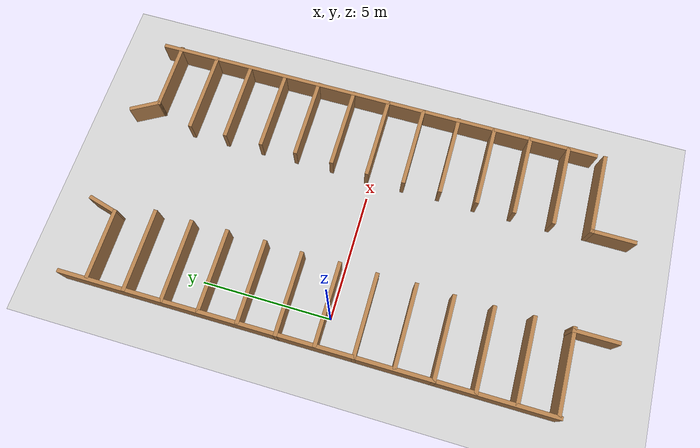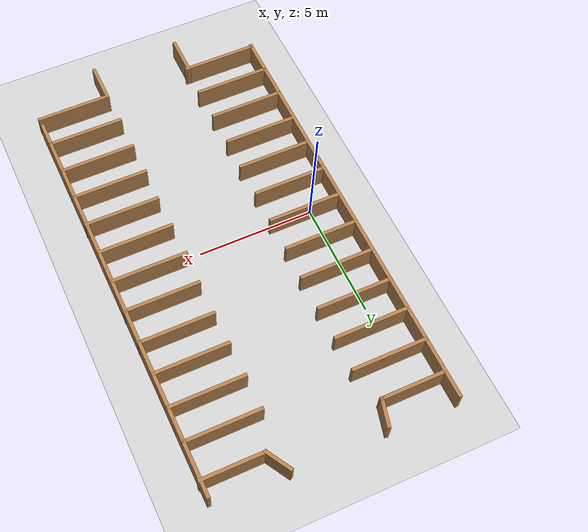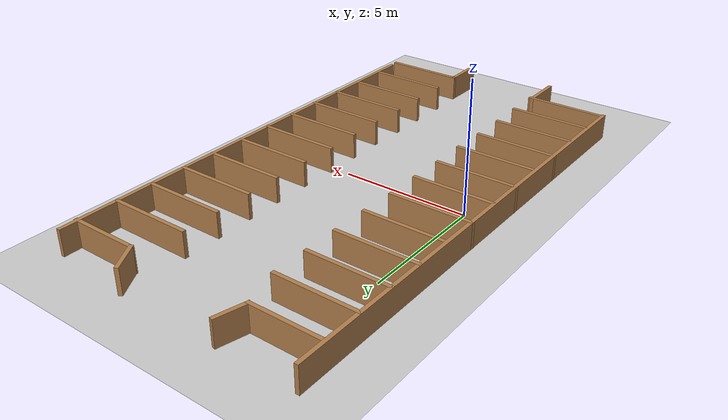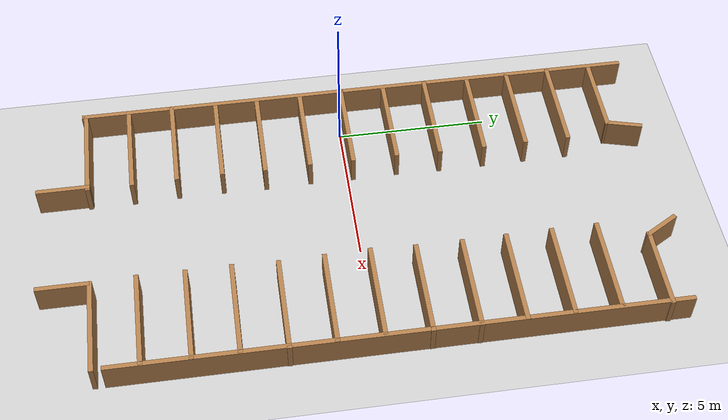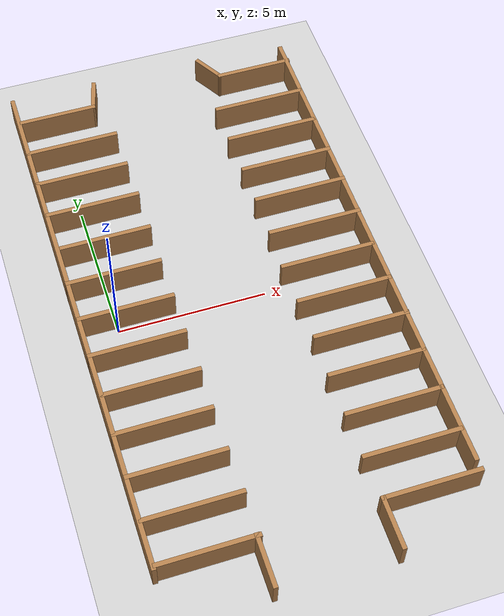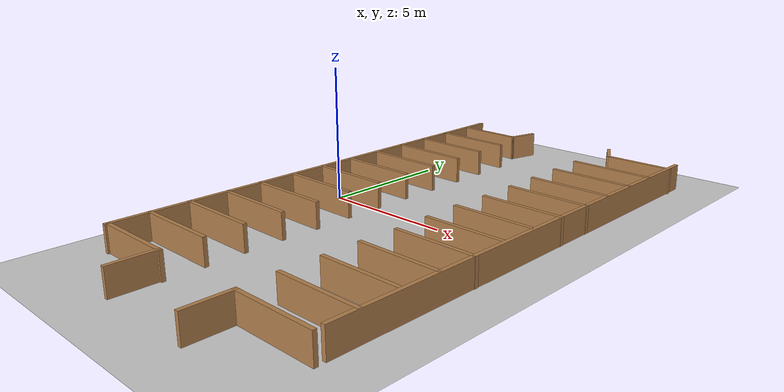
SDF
<sdf version='1.6'>

  <world name='default'>
    <light name='sun' type='directional'>
      <cast_shadows>1</cast_shadows>
      <pose frame=''>0 0 10 0 -0 0</pose>
      <diffuse>0.8 0.8 0.8 1</diffuse>
      <specular>0.1 0.1 0.1 1</specular>
      <attenuation>
        <range>1000</range>
        <constant>0.9</constant>
        <linear>0.01</linear>
        <quadratic>0.001</quadratic>
      </attenuation>
      <direction>-0.5 0.5 -1</direction>
    </light>
    <model name='ground_plane'>
      <static>1</static>
      <link name='link'>
        <collision name='collision'>
          <geometry>
            <plane>
              <normal>0 0 1</normal>
              <size>100 100</size>
            </plane>
          </geometry>
          <surface>
            <friction>
              <ode>
                <mu>100</mu>
                <mu2>50</mu2>
              </ode>
            </friction>
            <bounce/>
            <contact>
              <ode/>
            </contact>
          </surface>
          <max_contacts>10</max_contacts>
        </collision>
        <visual name='visual'>
          <cast_shadows>0</cast_shadows>
          <geometry>
            <plane>
              <normal>0 0 1</normal>
              <size>25 25</size>
            </plane>
          </geometry>
          <material>
            <script>
              <uri>file://media/materials/scripts/gazebo.material</uri>
              <name>Gazebo/Grey</name>
            </script>
          </material>
        </visual>
        <velocity_decay>
          <linear>0</linear>
          <angular>0</angular>
        </velocity_decay>
        <self_collide>0</self_collide>
        <kinematic>0</kinematic>
        <gravity>1</gravity>
      </link>
    </model>
    <model name='Parking_Lot_Final'>
      <pose frame=''>-0.2395 -0.024499 0 0 -0 0</pose>
      <link name='Wall_1'>
        <collision name='Wall_1_Collision'>
          <geometry>
            <box>
              <size>18.75 0.15 1</size>
            </box>
          </geometry>
          <pose frame=''>0 0 0.5 0 -0 0</pose>
        </collision>
        <visual name='Wall_1_Visual'>
          <pose frame=''>0 0 0.5 0 -0 0</pose>
          <geometry>
            <box>
              <size>18 0.15 1</size>
            </box>
          </geometry>
          <material>
            <script>
              <uri>file://media/materials/scripts/gazebo.material</uri>
              <name>Gazebo/Wood</name>
            </script>
            <ambient>1 1 1 1</ambient>
          </material>
        </visual>
        <pose frame=''>9.0865 0.805499 0 0 0 -1.5708</pose>
      </link>

      <link name='Wall_102'>
        <collision name='Wall_102_Collision'>
          <geometry>
            <box>
              <size>2.75 0.15 1</size>
            </box>
          </geometry>
          <pose frame=''>0 0 0.5 0 -0 0</pose>
        </collision>
        <visual name='Wall_102_Visual'>
          <pose frame=''>0 0 0.5 0 -0 0</pose>
          <geometry>
            <box>
              <size>2.75 0.15 1</size>
            </box>
          </geometry>
          <material>
            <script>
              <uri>file://media/materials/scripts/gazebo.material</uri>
              <name>Gazebo/Wood</name>
            </script>
            <ambient>1 1 1 1</ambient>
          </material>
        </visual>
        <pose frame=''>7.8255 9.0675 0 0 -0 0</pose>
      </link>
      <link name='Wall_104'>
        <collision name='Wall_104_Collision'>
          <geometry>
            <box>
              <size>3.25 0.15 1</size>
            </box>
          </geometry>
          <pose frame=''>0 0 0.5 0 -0 0</pose>
        </collision>
        <visual name='Wall_104_Visual'>
          <pose frame=''>0 0 0.5 0 -0 0</pose>
          <geometry>
            <box>
              <size>3.25 0.15 1</size>
            </box>
          </geometry>
          <material>
            <script>
              <uri>file://media/materials/scripts/gazebo.material</uri>
              <name>Gazebo/Wood</name>
            </script>
            <ambient>1 1 1 1</ambient>
          </material>
        </visual>
        <pose frame=''>7.5035 7.5095 0 0 -0 3.14159</pose>
      </link>
      <link name='Wall_108'>
        <collision name='Wall_108_Collision'>
          <geometry>
            <box>
              <size>3.25 0.15 1</size>
            </box>
          </geometry>
          <pose frame=''>0 0 0.5 0 -0 0</pose>
        </collision>
        <visual name='Wall_108_Visual'>
          <pose frame=''>0 0 0.5 0 -0 0</pose>
          <geometry>
            <box>
              <size>3.25 0.15 1</size>
            </box>
          </geometry>
          <material>
            <script>
              <uri>file://media/materials/scripts/gazebo.material</uri>
              <name>Gazebo/Wood</name>
            </script>
            <ambient>1 1 1 1</ambient>
          </material>
        </visual>
        <pose frame=''>7.5085 6.0475 0 0 -0 0</pose>
      </link>
      <link name='Wall_110'>
        <collision name='Wall_110_Collision'>
          <geometry>
            <box>
              <size>3.25 0.15 1</size>
            </box>
          </geometry>
          <pose frame=''>0 0 0.5 0 -0 0</pose>
        </collision>
        <visual name='Wall_110_Visual'>
          <pose frame=''>0 0 0.5 0 -0 0</pose>
          <geometry>
            <box>
              <size>3.25 0.15 1</size>
            </box>
          </geometry>
          <material>
            <script>
              <uri>file://media/materials/scripts/gazebo.material</uri>
              <name>Gazebo/Wood</name>
            </script>
            <ambient>1 1 1 1</ambient>
          </material>
        </visual>
        <pose frame=''>7.5305 4.5715 0 0 -0 0</pose>
      </link>
      <link name='Wall_112'>
        <collision name='Wall_112_Collision'>
          <geometry>
            <box>
              <size>3.25 0.15 1</size>
            </box>
          </geometry>
          <pose frame=''>0 0 0.5 0 -0 0</pose>
        </collision>
        <visual name='Wall_112_Visual'>
          <pose frame=''>0 0 0.5 0 -0 0</pose>
          <geometry>
            <box>
              <size>3.25 0.15 1</size>
            </box>
          </geometry>
          <material>
            <script>
              <uri>file://media/materials/scripts/gazebo.material</uri>
              <name>Gazebo/Wood</name>
            </script>
            <ambient>1 1 1 1</ambient>
          </material>
        </visual>
        <pose frame=''>7.5475 3.1615 0 0 -0 0</pose>
      </link>
      <link name='Wall_114'>
        <collision name='Wall_114_Collision'>
          <geometry>
            <box>
              <size>3.25 0.15 1</size>
            </box>
          </geometry>
          <pose frame=''>0 0 0.5 0 -0 0</pose>
        </collision>
        <visual name='Wall_114_Visual'>
          <pose frame=''>0 0 0.5 0 -0 0</pose>
          <geometry>
            <box>
              <size>3.25 0.15 1</size>
            </box>
          </geometry>
          <material>
            <script>
              <uri>file://media/materials/scripts/gazebo.material</uri>
              <name>Gazebo/Wood</name>
            </script>
            <ambient>1 1 1 1</ambient>
          </material>
        </visual>
        <pose frame=''>7.5475 1.6825 0 0 -0 0</pose>
      </link>
      <link name='Wall_116'>
        <collision name='Wall_116_Collision'>
          <geometry>
            <box>
              <size>3.25 0.15 1</size>
            </box>
          </geometry>
          <pose frame=''>0 0 0.5 0 -0 0</pose>
        </collision>
        <visual name='Wall_116_Visual'>
          <pose frame=''>0 0 0.5 0 -0 0</pose>
          <geometry>
            <box>
              <size>3.25 0.15 1</size>
            </box>
          </geometry>
          <material>
            <script>
              <uri>file://media/materials/scripts/gazebo.material</uri>
              <name>Gazebo/Wood</name>
            </script>
            <ambient>1 1 1 1</ambient>
          </material>
        </visual>
        <pose frame=''>7.4785 0.240499 0 0 -0 0</pose>
      </link>
      <link name='Wall_118'>
        <collision name='Wall_118_Collision'>
          <geometry>
            <box>
              <size>3.25 0.15 1</size>
            </box>
          </geometry>
          <pose frame=''>0 0 0.5 0 -0 0</pose>
        </collision>
        <visual name='Wall_118_Visual'>
          <pose frame=''>0 0 0.5 0 -0 0</pose>
          <geometry>
            <box>
              <size>3.25 0.15 1</size>
            </box>
          </geometry>
          <material>
            <script>
              <uri>file://media/materials/scripts/gazebo.material</uri>
              <name>Gazebo/Wood</name>
            </script>
            <ambient>1 1 1 1</ambient>
          </material>
        </visual>
        <pose frame=''>7.5175 -1.2075 0 0 -0 0</pose>
      </link>
      <link name='Wall_120'>
        <collision name='Wall_120_Collision'>
          <geometry>
            <box>
              <size>3.25 0.15 1</size>
            </box>
          </geometry>
          <pose frame=''>0 0 0.5 0 -0 0</pose>
        </collision>
        <visual name='Wall_120_Visual'>
          <pose frame=''>0 0 0.5 0 -0 0</pose>
          <geometry>
            <box>
              <size>3.25 0.15 1</size>
            </box>
          </geometry>
          <material>
            <script>
              <uri>file://media/materials/scripts/gazebo.material</uri>
              <name>Gazebo/Wood</name>
            </script>
            <ambient>1 1 1 1</ambient>
          </material>
        </visual>
        <pose frame=''>7.5535 -2.6525 0 0 -0 0</pose>
      </link>
      <link name='Wall_122'>
        <collision name='Wall_122_Collision'>
          <geometry>
            <box>
              <size>3.25 0.15 1</size>
            </box>
          </geometry>
          <pose frame=''>0 0 0.5 0 -0 0</pose>
        </collision>
        <visual name='Wall_122_Visual'>
          <pose frame=''>0 0 0.5 0 -0 0</pose>
          <geometry>
            <box>
              <size>3.25 0.15 1</size>
            </box>
          </geometry>
          <material>
            <script>
              <uri>file://media/materials/scripts/gazebo.material</uri>
              <name>Gazebo/Wood</name>
            </script>
            <ambient>1 1 1 1</ambient>
          </material>
        </visual>
        <pose frame=''>7.5015 -4.1085 0 0 -0 0</pose>
      </link>
      <link name='Wall_125'>
        <collision name='Wall_125_Collision'>
          <geometry>
            <box>
              <size>3.25 0.15 1</size>
            </box>
          </geometry>
          <pose frame=''>0 0 0.5 0 -0 0</pose>
        </collision>
        <visual name='Wall_125_Visual'>
          <pose frame=''>0 0 0.5 0 -0 0</pose>
          <geometry>
            <box>
              <size>3.25 0.15 1</size>
            </box>
          </geometry>
          <material>
            <script>
              <uri>file://media/materials/scripts/gazebo.material</uri>
              <name>Gazebo/Wood</name>
            </script>
            <ambient>1 1 1 1</ambient>
          </material>
        </visual>
        <pose frame=''>7.5105 -5.5515 0 0 -0 0</pose>
      </link>
      <link name='Wall_127'>
        <collision name='Wall_127_Collision'>
          <geometry>
            <box>
              <size>3.25 0.15 1</size>
            </box>
          </geometry>
          <pose frame=''>0 0 0.5 0 -0 0</pose>
        </collision>
        <visual name='Wall_127_Visual'>
          <pose frame=''>0 0 0.5 0 -0 0</pose>
          <geometry>
            <box>
              <size>3.25 0.15 1</size>
            </box>
          </geometry>
          <material>
            <script>
              <uri>file://media/materials/scripts/gazebo.material</uri>
              <name>Gazebo/Wood</name>
            </script>
            <ambient>1 1 1 1</ambient>
          </material>
        </visual>
        <pose frame=''>7.4955 -7.0615 0 0 -0 0</pose>
      </link>

      <link name='Wall_2'>
        <collision name='Wall_2_Collision'>
          <geometry>
            <box>
              <size>3.25 0.15 1</size>
            </box>
          </geometry>
          <pose frame=''>0 0 0.5 0 -0 0</pose>
        </collision>
        <visual name='Wall_2_Visual'>
          <pose frame=''>0 0 0.5 0 -0 0</pose>
          <geometry>
            <box>
              <size>3.25 0.15 1</size>
            </box>
          </geometry>
          <material>
            <script>
              <uri>file://media/materials/scripts/gazebo.material</uri>
              <name>Gazebo/Wood</name>
            </script>
            <ambient>1 1 1 1</ambient>
          </material>
        </visual>
        <pose frame=''>7.5365 -8.4945 0 0 -0 3.14159</pose>
      </link>

      <link name='Wall_3'>
        <collision name='Wall_3_Collision'>
          <geometry>
            <box>
              <size>1.75 0.15 1</size>
            </box>
          </geometry>
          <pose frame=''>0 0 0.5 0 -0 0</pose>
        </collision>
        <visual name='Wall_3_Visual'>
          <pose frame=''>0 0 0.5 0 -0 0</pose>
          <geometry>
            <box>
              <size>1.75 0.15 1</size>
            </box>
          </geometry>
          <material>
            <script>
              <uri>file://media/materials/scripts/gazebo.material</uri>
              <name>Gazebo/Wood</name>
            </script>
            <ambient>1 1 1 1</ambient>
          </material>
        </visual>
        <pose frame=''>5.9865 -9.2945 0 0 0 -1.5708</pose>
      </link>

      <link name='Wall_41'>
        <collision name='Wall_41_Collision'>
          <geometry>
            <box>
              <size>1.75 0.15 1</size>
            </box>
          </geometry>
          <pose frame=''>0 0 0.5 0 -0 0</pose>
        </collision>
        <visual name='Wall_41_Visual'>
          <pose frame=''>0 0 0.5 0 -0 0</pose>
          <geometry>
            <box>
              <size>1.75 0.15 1</size>
            </box>
          </geometry>
          <material>
            <script>
              <uri>file://media/materials/scripts/gazebo.material</uri>
              <name>Gazebo/Wood</name>
            </script>
            <ambient>1 1 1 1</ambient>
          </material>
        </visual>
        <pose frame=''>2.1235 -9.2905 0 0 -0 1.5708</pose>
      </link>
      <link name='Wall_42'>
        <collision name='Wall_42_Collision'>
          <geometry>
            <box>
              <size>3.25 0.15 1</size>
            </box>
          </geometry>
          <pose frame=''>0 0 0.5 0 -0 0</pose>
        </collision>
        <visual name='Wall_42_Visual'>
          <pose frame=''>0 0 0.5 0 -0 0</pose>
          <geometry>
            <box>
              <size>3.25 0.15 1</size>
            </box>
          </geometry>
          <material>
            <script>
              <uri>file://media/materials/scripts/gazebo.material</uri>
              <name>Gazebo/Wood</name>
            </script>
            <ambient>1 1 1 1</ambient>
          </material>
        </visual>
        <pose frame=''>0.6475 -8.4995 0 0 -0 0</pose>
      </link>

      <link name='Wall_65'>
        <collision name='Wall_65_Collision'>
          <geometry>
            <box>
              <size>3.25 0.15 1</size>
            </box>
          </geometry>
          <pose frame=''>0 0 0.5 0 -0 0</pose>
        </collision>
        <visual name='Wall_65_Visual'>
          <pose frame=''>0 0 0.5 0 -0 0</pose>
          <geometry>
            <box>
              <size>3.25 0.15 1</size>
            </box>
          </geometry>
          <material>
            <script>
              <uri>file://media/materials/scripts/gazebo.material</uri>
              <name>Gazebo/Wood</name>
            </script>
            <ambient>1 1 1 1</ambient>
          </material>
        </visual>
        <pose frame=''>0.5985 7.4965 0 0 -0 0</pose>
      </link>
      <link name='Wall_67'>
        <collision name='Wall_67_Collision'>
          <geometry>
            <box>
              <size>3.25 0.15 1</size>
            </box>
          </geometry>
          <pose frame=''>0 0 0.5 0 -0 0</pose>
        </collision>
        <visual name='Wall_67_Visual'>
          <pose frame=''>0 0 0.5 0 -0 0</pose>
          <geometry>
            <box>
              <size>3.25 0.15 1</size>
            </box>
          </geometry>
          <material>
            <script>
              <uri>file://media/materials/scripts/gazebo.material</uri>
              <name>Gazebo/Wood</name>
            </script>
            <ambient>1 1 1 1</ambient>
          </material>
        </visual>
        <pose frame=''>0.5985 6.0445 0 0 -0 0</pose>
      </link>
      <link name='Wall_69'>
        <collision name='Wall_69_Collision'>
          <geometry>
            <box>
              <size>3.25 0.15 1</size>
            </box>
          </geometry>
          <pose frame=''>0 0 0.5 0 -0 0</pose>
        </collision>
        <visual name='Wall_69_Visual'>
          <pose frame=''>0 0 0.5 0 -0 0</pose>
          <geometry>
            <box>
              <size>3.25 0.15 1</size>
            </box>
          </geometry>
          <material>
            <script>
              <uri>file://media/materials/scripts/gazebo.material</uri>
              <name>Gazebo/Wood</name>
            </script>
            <ambient>1 1 1 1</ambient>
          </material>
        </visual>
        <pose frame=''>0.6185 4.6325 0 0 -0 0</pose>
      </link>
      <link name='Wall_71'>
        <collision name='Wall_71_Collision'>
          <geometry>
            <box>
              <size>3.25 0.15 1</size>
            </box>
          </geometry>
          <pose frame=''>0 0 0.5 0 -0 0</pose>
        </collision>
        <visual name='Wall_71_Visual'>
          <pose frame=''>0 0 0.5 0 -0 0</pose>
          <geometry>
            <box>
              <size>3.25 0.15 1</size>
            </box>
          </geometry>
          <material>
            <script>
              <uri>file://media/materials/scripts/gazebo.material</uri>
              <name>Gazebo/Wood</name>
            </script>
            <ambient>1 1 1 1</ambient>
          </material>
        </visual>
        <pose frame=''>0.6185 3.1405 0 0 -0 0</pose>
      </link>
      <link name='Wall_73'>
        <collision name='Wall_73_Collision'>
          <geometry>
            <box>
              <size>3.25 0.15 1</size>
            </box>
          </geometry>
          <pose frame=''>0 0 0.5 0 -0 0</pose>
        </collision>
        <visual name='Wall_73_Visual'>
          <pose frame=''>0 0 0.5 0 -0 0</pose>
          <geometry>
            <box>
              <size>3.25 0.15 1</size>
            </box>
          </geometry>
          <material>
            <script>
              <uri>file://media/materials/scripts/gazebo.material</uri>
              <name>Gazebo/Wood</name>
            </script>
            <ambient>1 1 1 1</ambient>
          </material>
        </visual>
        <pose frame=''>0.5785 1.6895 0 0 -0 0</pose>
      </link>
      <link name='Wall_75'>
        <collision name='Wall_75_Collision'>
          <geometry>
            <box>
              <size>3.25 0.15 1</size>
            </box>
          </geometry>
          <pose frame=''>0 0 0.5 0 -0 0</pose>
        </collision>
        <visual name='Wall_75_Visual'>
          <pose frame=''>0 0 0.5 0 -0 0</pose>
          <geometry>
            <box>
              <size>3.25 0.15 1</size>
            </box>
          </geometry>
          <material>
            <script>
              <uri>file://media/materials/scripts/gazebo.material</uri>
              <name>Gazebo/Wood</name>
            </script>
            <ambient>1 1 1 1</ambient>
          </material>
        </visual>
        <pose frame=''>0.5985 0.228499 0 0 -0 0</pose>
      </link>
      <link name='Wall_77'>
        <collision name='Wall_77_Collision'>
          <geometry>
            <box>
              <size>3.25 0.15 1</size>
            </box>
          </geometry>
          <pose frame=''>0 0 0.5 0 -0 0</pose>
        </collision>
        <visual name='Wall_77_Visual'>
          <pose frame=''>0 0 0.5 0 -0 0</pose>
          <geometry>
            <box>
              <size>3.25 0.15 1</size>
            </box>
          </geometry>
          <material>
            <script>
              <uri>file://media/materials/scripts/gazebo.material</uri>
              <name>Gazebo/Wood</name>
            </script>
            <ambient>1 1 1 1</ambient>
          </material>
        </visual>
        <pose frame=''>0.5815 -1.2065 0 0 -0 0</pose>
      </link>
      <link name='Wall_79'>
        <collision name='Wall_79_Collision'>
          <geometry>
            <box>
              <size>3.25 0.15 1</size>
            </box>
          </geometry>
          <pose frame=''>0 0 0.5 0 -0 0</pose>
        </collision>
        <visual name='Wall_79_Visual'>
          <pose frame=''>0 0 0.5 0 -0 0</pose>
          <geometry>
            <box>
              <size>3.25 0.15 1</size>
            </box>
          </geometry>
          <material>
            <script>
              <uri>file://media/materials/scripts/gazebo.material</uri>
              <name>Gazebo/Wood</name>
            </script>
            <ambient>1 1 1 1</ambient>
          </material>
        </visual>
        <pose frame=''>0.6155 -2.6935 0 0 -0 0</pose>
      </link>

      <link name='Wall_81'>
        <collision name='Wall_81_Collision'>
          <geometry>
            <box>
              <size>3.25 0.15 1</size>
            </box>
          </geometry>
          <pose frame=''>0 0 0.5 0 -0 0</pose>
        </collision>
        <visual name='Wall_81_Visual'>
          <pose frame=''>0 0 0.5 0 -0 0</pose>
          <geometry>
            <box>
              <size>3.25 0.15 1</size>
            </box>
          </geometry>
          <material>
            <script>
              <uri>file://media/materials/scripts/gazebo.material</uri>
              <name>Gazebo/Wood</name>
            </script>
            <ambient>1 1 1 1</ambient>
          </material>
        </visual>
        <pose frame=''>0.5815 -4.1115 0 0 -0 0</pose>
      </link>
      <link name='Wall_83'>
        <collision name='Wall_83_Collision'>
          <geometry>
            <box>
              <size>3.25 0.15 1</size>
            </box>
          </geometry>
          <pose frame=''>0 0 0.5 0 -0 0</pose>
        </collision>
        <visual name='Wall_83_Visual'>
          <pose frame=''>0 0 0.5 0 -0 0</pose>
          <geometry>
            <box>
              <size>3.25 0.15 1</size>
            </box>
          </geometry>
          <material>
            <script>
              <uri>file://media/materials/scripts/gazebo.material</uri>
              <name>Gazebo/Wood</name>
            </script>
            <ambient>1 1 1 1</ambient>
          </material>
        </visual>
        <pose frame=''>0.5915 -5.5985 0 0 -0 0</pose>
      </link>
      <link name='Wall_85'>
        <collision name='Wall_85_Collision'>
          <geometry>
            <box>
              <size>3.25 0.15 1</size>
            </box>
          </geometry>
          <pose frame=''>0 0 0.5 0 -0 0</pose>
        </collision>
        <visual name='Wall_85_Visual'>
          <pose frame=''>0 0 0.5 0 -0 0</pose>
          <geometry>
            <box>
              <size>3.25 0.15 1</size>
            </box>
          </geometry>
          <material>
            <script>
              <uri>file://media/materials/scripts/gazebo.material</uri>
              <name>Gazebo/Wood</name>
            </script>
            <ambient>1 1 1 1</ambient>
          </material>
        </visual>
        <pose frame=''>0.6375 -7.0625 0 0 -0 0</pose>
      </link>
      <link name='Wall_87'>
        <collision name='Wall_87_Collision'>
          <geometry>
            <box>
              <size>18.75 0.15 1</size>
            </box>
          </geometry>
          <pose frame=''>0 0 0.5 0 -0 0</pose>
        </collision>
        <visual name='Wall_87_Visual'>
          <pose frame=''>0 0 0.5 0 -0 0</pose>
          <geometry>
            <box>
              <size>18.75 0.15 1</size>
            </box>
          </geometry>
          <material>
            <script>
              <uri>file://media/materials/scripts/gazebo.material</uri>
              <name>Gazebo/Wood</name>
            </script>
            <ambient>1 1 1 1</ambient>
          </material>
        </visual>
        <pose frame=''>-0.9675 0.736499 0 0 0 -1.5708</pose>
      </link>

      <link name='Wall_93'>
        <collision name='Wall_93_Collision'>
          <geometry>
            <box>
              <size>2.75 0.15 1</size>
            </box>
          </geometry>
          <pose frame=''>0 0 0.5 0 -0 0</pose>
        </collision>
        <visual name='Wall_93_Visual'>
          <pose frame=''>0 0 0.5 0 -0 0</pose>
          <geometry>
            <box>
              <size>2.75 0.15 1</size>
            </box>
          </geometry>
          <material>
            <script>
              <uri>file://media/materials/scripts/gazebo.material</uri>
              <name>Gazebo/Wood</name>
            </script>
            <ambient>1 1 1 1</ambient>
          </material>
        </visual><link name='Wall_85'>
        <collision name='Wall_85_Collision'>
          <geometry>
            <box>
              <size>3.25 0.15 1</size>
            </box>
          </geometry>
          <pose frame=''>0 0 0.5 0 -0 0</pose>
        </collision>
        <visual name='Wall_85_Visual'>
          <pose frame=''>0 0 0.5 0 -0 0</pose>
          <geometry>
            <box>
              <size>3.25 0.15 1</size>
            </box>
          </geometry>
          <material>
            <script>
              <uri>file://media/materials/scripts/gazebo.material</uri>
              <name>Gazebo/Wood</name>
            </script>
            <ambient>1 1 1 1</ambient>
          </material>
        </visual>
        <pose frame=''>0.6375 -7.0625 0 0 -0 0</pose>
      </link>
        <pose frame=''>0.4325 8.9705 0 0 -0 0</pose>
      </link>
      <link name='Wall_94'>
        <collision name='Wall_94_Collision'>
          <geometry>
            <box>
              <size>1.25 0.15 1</size>
            </box>
          </geometry>
          <pose frame=''>0 0 0.5 3.25 0.15 10 -0 0</pose>
        </collision>
        <visual name='Wall_94_Visual'>
          <pose frame=''>0 0 0.5 0 -0 0</pose>
          <geometry>
            <box>
              <size>1.25 0.15 1</size>
            </box>
          </geometry>
          <material>
            <script>
              <uri>file://media/materials/scripts/gazebo.material</uri>
              <name>Gazebo/Wood</name>
            </script>
            <ambient>1 1 1 1</ambient>
          </material>
        </visual>
        <pose frame=''>1.8745 9.502 0 0 -0 1.30973</pose>
      </link>
      <link name='Wall_99'>
        <collision name='Wall_99_Collision'>
          <geometry>
            <box>
              <size>1.25 0.15 1</size>
            </box>
          </geometry>
          <pose frame=''>0 0 0.5 0 -0 0</pose>
        </collision>
        <visual name='Wall_99_Visual'>
          <pose frame=''>0 0 0.5 0 -0 0</pose>
          <geometry>
            <box>
              <size>1.25 0.15 1</size>
            </box>
          </geometry>
          <material>
            <script>
              <uri>file://media/materials/scripts/gazebo.material</uri>
              <name>Gazebo/Wood</name>
            </script>
            <ambient>1 1 1 1</ambient>
          </material>
        </visual>
        <pose frame=''>6.2505 9.5435 0 0 0 -1.04691</pose>
      </link>
      <static>1</static>
    </model>
    <physics type='ode'>
      <max_step_size>0.001</max_step_size>
      <real_time_factor>1</real_time_factor>
      <real_time_update_rate>1000</real_time_update_rate>
      <gravity>0 0 -9.8</gravity>
    </physics>
    <scene>
      <ambient>0.4 0.4 0.4 1</ambient>
      <background>0.7 0.7 0.7 1</background>
      <shadows>1</shadows>
    </scene>
    <spherical_coordinates>
      <surface_model>EARTH_WGS84</surface_model>
      <latitude_deg>0</latitude_deg>
      <longitude_deg>0</longitude_deg>
      <elevation>0</elevation>
      <heading_deg>0</heading_deg>
    </spherical_coordinates>
  </world>
</sdf>
